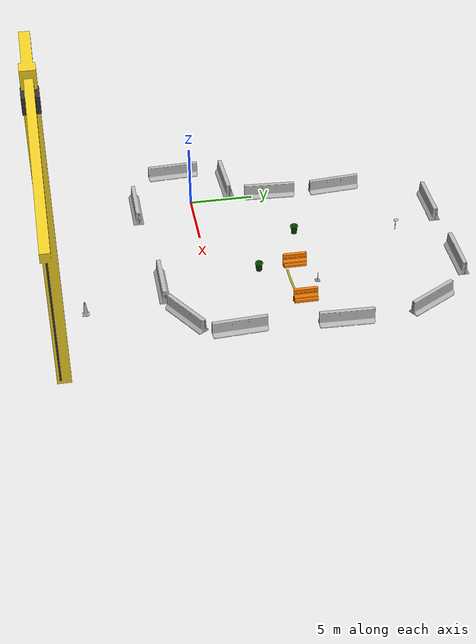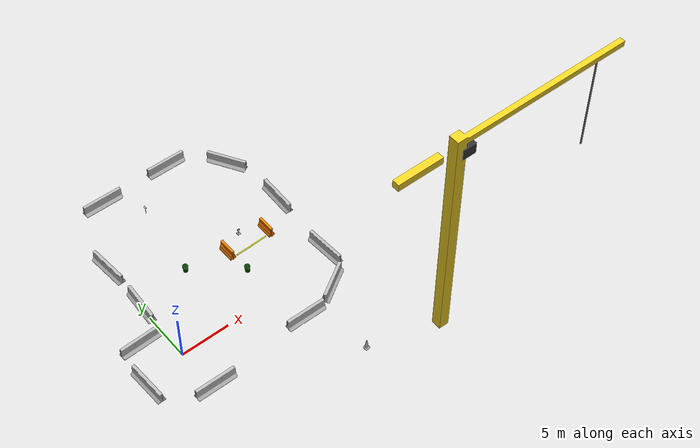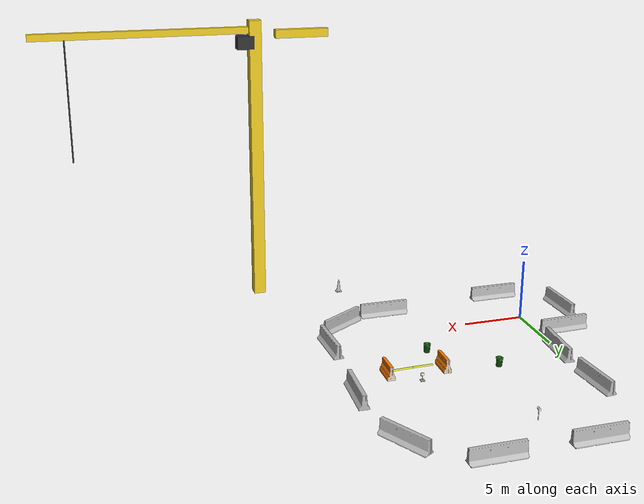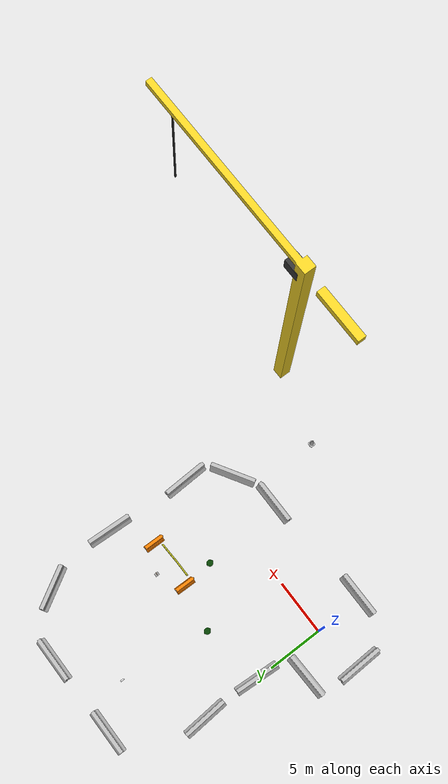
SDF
<sdf version="1.6">
 <world name="default">
  <light name="sun" type="directional">
   <pose>0 0 10 0 -0 0</pose>
   <diffuse>0.8 0.8 0.8 1</diffuse>
   <specular>0.2 0.2 0.2 1</specular>
   <attenuation>
    <range>1000</range>
    <constant>0.9</constant>
    <linear>0.01</linear>
    <quadratic>0.001</quadratic>
   </attenuation>
   <direction>-0.5 0.1 -0.9</direction>
  </light>
  <gravity>0 0 -9.8</gravity>
  <magnetic_field>6e-06 2.3e-05 -4.2e-05</magnetic_field>
  <atmosphere type="adiabatic"/>
  <physics name="default_physics" default="0" type="ode">
   <max_step_size>0.001</max_step_size>
   <real_time_factor>1</real_time_factor>
   <real_time_update_rate>1000</real_time_update_rate>
  </physics>
  <scene><ambient>0.4 0.4 0.4 1</ambient><background>0.7 0.7 0.7 1</background><shadows>1</shadows></scene>
  <audio><device>default</device></audio>
  <spherical_coordinates>
   <surface_model>EARTH_WGS84</surface_model>
   <latitude_deg>0</latitude_deg>
   <longitude_deg>0</longitude_deg>
   <elevation>0</elevation>
   <heading_deg>0</heading_deg>
  </spherical_coordinates>
  <model name="Construction Cone_1">
   <link name="link">
    <collision name="collision">
     <geometry>
      <mesh><scale>10 10 10</scale><uri>model://construction_cone/meshes/construction_cone.dae</uri></mesh>
     </geometry>
    </collision>
    <visual name="visual">
     <geometry>
      <mesh><scale>10 10 10</scale><uri>model://construction_cone/meshes/construction_cone.dae</uri></mesh>
     </geometry>
    </visual>
    <inertial>
     <inertia><ixx>1</ixx><ixy>0</ixy><ixz>0</ixz><iyy>1</iyy><iyz>0</iyz><izz>1</izz></inertia>
     <mass>1</mass>
    </inertial>
   </link>
   <pose>12.9924 -9.53238 -0.018163 0.015348 -0.010623 0.000372</pose>
  </model>
  <model name="jersey_barrier">
   <static>1</static>
   <link name="link">
    <visual name="visual">
     <geometry><mesh><uri>model://jersey_barrier/meshes/jersey_barrier.dae</uri></mesh></geometry>
    </visual>
    <collision name="upright">
     <pose>0 0 0.5715 0 -0 0</pose>
     <geometry><box><size>4.06542 0.3063 1.143</size></box></geometry>
    </collision>
    <collision name="base">
     <pose>0 0 0.032258 0 -0 0</pose>
     <geometry><box><size>4.06542 0.8107 0.064516</size></box></geometry>
    </collision>
    <collision name="base2">
     <pose>0 0 0.1 0 -0 0</pose>
     <geometry><box><size>4.06542 0.65 0.1</size></box></geometry>
    </collision>
    <collision name="base3">
     <pose>0 0 0.2 0 -0 0</pose>
     <geometry><box><size>4.06542 0.5 0.1</size></box></geometry>
    </collision>
    <collision name="left-angle">
     <pose>0 -0.224 0.2401 0.9 -0 0</pose>
     <geometry><box><size>4.06542 0.5 0.064516</size></box></geometry>
    </collision>
    <collision name="right-angle">
     <pose>0 0.224 0.2401 -0.9 0 0</pose>
     <geometry><box><size>4.06542 0.5 0.064516</size></box></geometry>
    </collision>
   </link>
   <pose>10.8468 -3.68239 0 0 -0 0</pose>
  </model>
  <model name="first_2015_trash_can">
   <link name="link">
    <inertial>
     <pose>0 0 0.3683 0 -0 0</pose>
     <mass>4.83076</mass>
     <inertia>
      <ixx>0.281534</ixx>
      <ixy>0</ixy>
      <ixz>0</ixz>
      <iyy>0.281534</iyy>
      <iyz>0</iyz>
      <izz>0.126223</izz>
     </inertia>
    </inertial>
    <visual name="visual">
     <geometry><mesh><uri>model://first_2015_trash_can/meshes/trash_can.dae</uri></mesh></geometry>
    </visual>
    <collision name="collision">
     <geometry><mesh><uri>model://first_2015_trash_can/meshes/trash_can.dae</uri></mesh></geometry>
    </collision>
   </link>
   <pose>9.96337 3.82178 0.011996 -0.025625 0.004564 0.000106</pose>
  </model>
  <model name="jersey_barrier_0">
   <static>1</static>
   <link name="link">
    <visual name="visual">
     <geometry><mesh><uri>model://jersey_barrier/meshes/jersey_barrier.dae</uri></mesh></geometry>
    </visual>
    <collision name="upright">
     <pose>0 0 0.5715 0 -0 0</pose>
     <geometry><box><size>4.06542 0.3063 1.143</size></box></geometry>
    </collision>
    <collision name="base">
     <pose>0 0 0.032258 0 -0 0</pose>
     <geometry><box><size>4.06542 0.8107 0.064516</size></box></geometry>
    </collision>
    <collision name="base2">
     <pose>0 0 0.1 0 -0 0</pose>
     <geometry><box><size>4.06542 0.65 0.1</size></box></geometry>
    </collision>
    <collision name="base3">
     <pose>0 0 0.2 0 -0 0</pose>
     <geometry><box><size>4.06542 0.5 0.1</size></box></geometry>
    </collision>
    <collision name="left-angle">
     <pose>0 -0.224 0.2401 0.9 -0 0</pose>
     <geometry><box><size>4.06542 0.5 0.064516</size></box></geometry>
    </collision>
    <collision name="right-angle">
     <pose>0 0.224 0.2401 -0.9 0 0</pose>
     <geometry><box><size>4.06542 0.5 0.064516</size></box></geometry>
    </collision>
   </link>
   <pose>16.9794 1.19358 0 0 -0 1.6211</pose>
  </model>
  <model name="first_2015_trash_can_0">
   <link name="link">
    <inertial>
     <pose>0 0 0.3683 0 -0 0</pose>
     <mass>4.83076</mass>
     <inertia>
      <ixx>0.281534</ixx>
      <ixy>0</ixy>
      <ixz>0</ixz>
      <iyy>0.281534</iyy>
      <iyz>0</iyz>
      <izz>0.126223</izz>
     </inertia>
    </inertial>
    <visual name="visual">
     <geometry><mesh><uri>model://first_2015_trash_can/meshes/trash_can.dae</uri></mesh></geometry>
    </visual>
    <collision name="collision">
     <geometry><mesh><uri>model://first_2015_trash_can/meshes/trash_can.dae</uri></mesh></geometry>
    </collision>
   </link>
   <pose>5.58885 7.41546 -0.022293 -0.009962 -0.014675 8e-06</pose>
  </model>
  <model name="jersey_barrier_1">
   <static>1</static>
   <link name="link">
    <visual name="visual">
     <geometry><mesh><uri>model://jersey_barrier/meshes/jersey_barrier.dae</uri></mesh></geometry>
    </visual>
    <collision name="upright">
     <pose>0 0 0.5715 0 -0 0</pose>
     <geometry><box><size>4.06542 0.3063 1.143</size></box></geometry>
    </collision>
    <collision name="base">
     <pose>0 0 0.032258 0 -0 0</pose>
     <geometry><box><size>4.06542 0.8107 0.064516</size></box></geometry>
    </collision>
    <collision name="base2">
     <pose>0 0 0.1 0 -0 0</pose>
     <geometry><box><size>4.06542 0.65 0.1</size></box></geometry>
    </collision>
    <collision name="base3">
     <pose>0 0 0.2 0 -0 0</pose>
     <geometry><box><size>4.06542 0.5 0.1</size></box></geometry>
    </collision>
    <collision name="left-angle">
     <pose>0 -0.224 0.2401 0.9 -0 0</pose>
     <geometry><box><size>4.06542 0.5 0.064516</size></box></geometry>
    </collision>
    <collision name="right-angle">
     <pose>0 0.224 0.2401 -0.9 0 0</pose>
     <geometry><box><size>4.06542 0.5 0.064516</size></box></geometry>
    </collision>
   </link>
   <pose>0.090674 6.449 0 0 -0 1.51262</pose>
  </model>
  <model name="jersey_barrier_2">
   <static>1</static>
   <link name="link">
    <visual name="visual">
     <geometry><mesh><uri>model://jersey_barrier/meshes/jersey_barrier.dae</uri></mesh></geometry>
    </visual>
    <collision name="upright">
     <pose>0 0 0.5715 0 -0 0</pose>
     <geometry><box><size>4.06542 0.3063 1.143</size></box></geometry>
    </collision>
    <collision name="base">
     <pose>0 0 0.032258 0 -0 0</pose>
     <geometry><box><size>4.06542 0.8107 0.064516</size></box></geometry>
    </collision>
    <collision name="base2">
     <pose>0 0 0.1 0 -0 0</pose>
     <geometry><box><size>4.06542 0.65 0.1</size></box></geometry>
    </collision>
    <collision name="base3">
     <pose>0 0 0.2 0 -0 0</pose>
     <geometry><box><size>4.06542 0.5 0.1</size></box></geometry>
    </collision>
    <collision name="left-angle">
     <pose>0 -0.224 0.2401 0.9 -0 0</pose>
     <geometry><box><size>4.06542 0.5 0.064516</size></box></geometry>
    </collision>
    <collision name="right-angle">
     <pose>0 0.224 0.2401 -0.9 0 0</pose>
     <geometry><box><size>4.06542 0.5 0.064516</size></box></geometry>
    </collision>
   </link>
   <pose>17.3619 8.94952 0 0 0 -1.6102</pose>
  </model>
  <model name="jersey_barrier_3">
   <static>1</static>
   <link name="link">
    <visual name="visual">
     <geometry><mesh><uri>model://jersey_barrier/meshes/jersey_barrier.dae</uri></mesh></geometry>
    </visual>
    <collision name="upright">
     <pose>0 0 0.5715 0 -0 0</pose>
     <geometry><box><size>4.06542 0.3063 1.143</size></box></geometry>
    </collision>
    <collision name="base">
     <pose>0 0 0.032258 0 -0 0</pose>
     <geometry><box><size>4.06542 0.8107 0.064516</size></box></geometry>
    </collision>
    <collision name="base2">
     <pose>0 0 0.1 0 -0 0</pose>
     <geometry><box><size>4.06542 0.65 0.1</size></box></geometry>
    </collision>
    <collision name="base3">
     <pose>0 0 0.2 0 -0 0</pose>
     <geometry><box><size>4.06542 0.5 0.1</size></box></geometry>
    </collision>
    <collision name="left-angle">
     <pose>0 -0.224 0.2401 0.9 -0 0</pose>
     <geometry><box><size>4.06542 0.5 0.064516</size></box></geometry>
    </collision>
    <collision name="right-angle">
     <pose>0 0.224 0.2401 -0.9 0 0</pose>
     <geometry><box><size>4.06542 0.5 0.064516</size></box></geometry>
    </collision>
   </link>
   <pose>11.3589 18.9756 0 0 -0 0</pose>
  </model>
  <model name="jersey_barrier_4">
   <static>1</static>
   <link name="link">
    <visual name="visual">
     <geometry><mesh><uri>model://jersey_barrier/meshes/jersey_barrier.dae</uri></mesh></geometry>
    </visual>
    <collision name="upright">
     <pose>0 0 0.5715 0 -0 0</pose>
     <geometry><box><size>4.06542 0.3063 1.143</size></box></geometry>
    </collision>
    <collision name="base">
     <pose>0 0 0.032258 0 -0 0</pose>
     <geometry><box><size>4.06542 0.8107 0.064516</size></box></geometry>
    </collision>
    <collision name="base2">
     <pose>0 0 0.1 0 -0 0</pose>
     <geometry><box><size>4.06542 0.65 0.1</size></box></geometry>
    </collision>
    <collision name="base3">
     <pose>0 0 0.2 0 -0 0</pose>
     <geometry><box><size>4.06542 0.5 0.1</size></box></geometry>
    </collision>
    <collision name="left-angle">
     <pose>0 -0.224 0.2401 0.9 -0 0</pose>
     <geometry><box><size>4.06542 0.5 0.064516</size></box></geometry>
    </collision>
    <collision name="right-angle">
     <pose>0 0.224 0.2401 -0.9 0 0</pose>
     <geometry><box><size>4.06542 0.5 0.064516</size></box></geometry>
    </collision>
   </link>
   <pose>4.00034 18.8022 0 0 -0 0</pose>
  </model>
  <model name="jersey_barrier_7">
   <static>1</static>
   <link name="link">
    <visual name="visual">
     <geometry><mesh><uri>model://jersey_barrier/meshes/jersey_barrier.dae</uri></mesh></geometry>
    </visual>
    <collision name="upright">
     <pose>0 0 0.5715 0 -0 0</pose>
     <geometry><box><size>4.06542 0.3063 1.143</size></box></geometry>
    </collision>
    <collision name="base">
     <pose>0 0 0.032258 0 -0 0</pose>
     <geometry><box><size>4.06542 0.8107 0.064516</size></box></geometry>
    </collision>
    <collision name="base2">
     <pose>0 0 0.1 0 -0 0</pose>
     <geometry><box><size>4.06542 0.65 0.1</size></box></geometry>
    </collision>
    <collision name="base3">
     <pose>0 0 0.2 0 -0 0</pose>
     <geometry><box><size>4.06542 0.5 0.1</size></box></geometry>
    </collision>
    <collision name="left-angle">
     <pose>0 -0.224 0.2401 0.9 -0 0</pose>
     <geometry><box><size>4.06542 0.5 0.064516</size></box></geometry>
    </collision>
    <collision name="right-angle">
     <pose>0 0.224 0.2401 -0.9 0 0</pose>
     <geometry><box><size>4.06542 0.5 0.064516</size></box></geometry>
    </collision>
   </link>
   <pose>0.097311 11.8014 0 0 0 -1.49309</pose>
  </model>
  <model name="jersey_barrier_8">
   <static>1</static>
   <link name="link">
    <visual name="visual">
     <geometry><mesh><uri>model://jersey_barrier/meshes/jersey_barrier.dae</uri></mesh></geometry>
    </visual>
    <collision name="upright">
     <pose>0 0 0.5715 0 -0 0</pose>
     <geometry><box><size>4.06542 0.3063 1.143</size></box></geometry>
    </collision>
    <collision name="base">
     <pose>0 0 0.032258 0 -0 0</pose>
     <geometry><box><size>4.06542 0.8107 0.064516</size></box></geometry>
    </collision>
    <collision name="base2">
     <pose>0 0 0.1 0 -0 0</pose>
     <geometry><box><size>4.06542 0.65 0.1</size></box></geometry>
    </collision>
    <collision name="base3">
     <pose>0 0 0.2 0 -0 0</pose>
     <geometry><box><size>4.06542 0.5 0.1</size></box></geometry>
    </collision>
    <collision name="left-angle">
     <pose>0 -0.224 0.2401 0.9 -0 0</pose>
     <geometry><box><size>4.06542 0.5 0.064516</size></box></geometry>
    </collision>
    <collision name="right-angle">
     <pose>0 0.224 0.2401 -0.9 0 0</pose>
     <geometry><box><size>4.06542 0.5 0.064516</size></box></geometry>
    </collision>
   </link>
   <pose>16.2818 15.639 0 0 0 -1.03676</pose>
  </model>
  <model name="drc_practice_yellow_parking_block">
   <static>1</static>
   <link name="link">
    <visual name="visual">
     <geometry><mesh><uri>model://drc_practice_yellow_parking_block/meshes/block.dae</uri></mesh></geometry>
    </visual>
    <collision name="collision">
     <geometry><mesh><uri>model://drc_practice_yellow_parking_block/meshes/block.dae</uri></mesh></geometry>
    </collision>
   </link>
   <pose>11.2221 5.95545 0 0 0 -1.55759</pose>
  </model>
  <model name="drc_practice_yellow_parking_block_0">
   <static>1</static>
   <link name="link">
    <visual name="visual">
     <geometry><mesh><uri>model://drc_practice_yellow_parking_block/meshes/block.dae</uri></mesh></geometry>
    </visual>
    <collision name="collision">
     <geometry><mesh><uri>model://drc_practice_yellow_parking_block/meshes/block.dae</uri></mesh></geometry>
    </collision>
   </link>
   <pose>12.8414 6.01079 0 0 0 -1.52489</pose>
  </model>
  <model name="jersey_barrier_9">
   <static>1</static>
   <link name="link">
    <visual name="visual">
     <geometry><mesh><uri>model://jersey_barrier/meshes/jersey_barrier.dae</uri></mesh></geometry>
    </visual>
    <collision name="upright">
     <pose>0 0 0.5715 0 -0 0</pose>
     <geometry><box><size>4.06542 0.3063 1.143</size></box></geometry>
    </collision>
    <collision name="base">
     <pose>0 0 0.032258 0 -0 0</pose>
     <geometry><box><size>4.06542 0.8107 0.064516</size></box></geometry>
    </collision>
    <collision name="base2">
     <pose>0 0 0.1 0 -0 0</pose>
     <geometry><box><size>4.06542 0.65 0.1</size></box></geometry>
    </collision>
    <collision name="base3">
     <pose>0 0 0.2 0 -0 0</pose>
     <geometry><box><size>4.06542 0.5 0.1</size></box></geometry>
    </collision>
    <collision name="left-angle">
     <pose>0 -0.224 0.2401 0.9 -0 0</pose>
     <geometry><box><size>4.06542 0.5 0.064516</size></box></geometry>
    </collision>
    <collision name="right-angle">
     <pose>0 0.224 0.2401 -0.9 0 0</pose>
     <geometry><box><size>4.06542 0.5 0.064516</size></box></geometry>
    </collision>
   </link>
   <pose>-2.25258 3.09565 0 0 0 -3.10908</pose>
  </model>
  <model name="jersey_barrier_10">
   <static>1</static>
   <link name="link">
    <visual name="visual">
     <geometry><mesh><uri>model://jersey_barrier/meshes/jersey_barrier.dae</uri></mesh></geometry>
    </visual>
    <collision name="upright">
     <pose>0 0 0.5715 0 -0 0</pose>
     <geometry><box><size>4.06542 0.3063 1.143</size></box></geometry>
    </collision>
    <collision name="base">
     <pose>0 0 0.032258 0 -0 0</pose>
     <geometry><box><size>4.06542 0.8107 0.064516</size></box></geometry>
    </collision>
    <collision name="base2">
     <pose>0 0 0.1 0 -0 0</pose>
     <geometry><box><size>4.06542 0.65 0.1</size></box></geometry>
    </collision>
    <collision name="base3">
     <pose>0 0 0.2 0 -0 0</pose>
     <geometry><box><size>4.06542 0.5 0.1</size></box></geometry>
    </collision>
    <collision name="left-angle">
     <pose>0 -0.224 0.2401 0.9 -0 0</pose>
     <geometry><box><size>4.06542 0.5 0.064516</size></box></geometry>
    </collision>
    <collision name="right-angle">
     <pose>0 0.224 0.2401 -0.9 0 0</pose>
     <geometry><box><size>4.06542 0.5 0.064516</size></box></geometry>
    </collision>
   </link>
   <pose>-4.19616 -0.932131 0 0 0 -1.52795</pose>
  </model>
  <model name="jersey_barrier_11">
   <static>1</static>
   <link name="link">
    <visual name="visual">
     <geometry><mesh><uri>model://jersey_barrier/meshes/jersey_barrier.dae</uri></mesh></geometry>
    </visual>
    <collision name="upright">
     <pose>0 0 0.5715 0 -0 0</pose>
     <geometry><box><size>4.06542 0.3063 1.143</size></box></geometry>
    </collision>
    <collision name="base">
     <pose>0 0 0.032258 0 -0 0</pose>
     <geometry><box><size>4.06542 0.8107 0.064516</size></box></geometry>
    </collision>
    <collision name="base2">
     <pose>0 0 0.1 0 -0 0</pose>
     <geometry><box><size>4.06542 0.65 0.1</size></box></geometry>
    </collision>
    <collision name="base3">
     <pose>0 0 0.2 0 -0 0</pose>
     <geometry><box><size>4.06542 0.5 0.1</size></box></geometry>
    </collision>
    <collision name="left-angle">
     <pose>0 -0.224 0.2401 0.9 -0 0</pose>
     <geometry><box><size>4.06542 0.5 0.064516</size></box></geometry>
    </collision>
    <collision name="right-angle">
     <pose>0 0.224 0.2401 -0.9 0 0</pose>
     <geometry><box><size>4.06542 0.5 0.064516</size></box></geometry>
    </collision>
   </link>
   <pose>0.365734 -4.50604 0 0 -0 0</pose>
  </model>
  <model name="jersey_barrier_clone">
   <static>1</static>
   <link name="link">
    <visual name="visual">
     <geometry><mesh><uri>model://jersey_barrier/meshes/jersey_barrier.dae</uri></mesh></geometry>
    </visual>
    <collision name="upright">
     <pose>0 0 0.5715 0 -0 0</pose>
     <geometry><box><size>4.06542 0.3063 1.143</size></box></geometry>
    </collision>
    <collision name="base">
     <pose>0 0 0.032258 0 -0 0</pose>
     <geometry><box><size>4.06542 0.8107 0.064516</size></box></geometry>
    </collision>
    <collision name="base2">
     <pose>0 0 0.1 0 -0 0</pose>
     <geometry><box><size>4.06542 0.65 0.1</size></box></geometry>
    </collision>
    <collision name="base3">
     <pose>0 0 0.2 0 -0 0</pose>
     <geometry><box><size>4.06542 0.5 0.1</size></box></geometry>
    </collision>
    <collision name="left-angle">
     <pose>0 -0.224 0.2401 0.9 -0 0</pose>
     <geometry><box><size>4.06542 0.5 0.064516</size></box></geometry>
    </collision>
    <collision name="right-angle">
     <pose>0 0.224 0.2401 -0.9 0 0</pose>
     <geometry><box><size>4.06542 0.5 0.064516</size></box></geometry>
    </collision>
   </link>
   <pose>14.9329 -2.38981 0 0 -0 0.549599</pose>
  </model>
  <model name="drc_practice_organge_jersey_barrier">
   <static>1</static>
   <link name="link">
    <visual name="visual">
     <geometry>
      <mesh><uri>model://drc_practice_orange_jersey_barrier/meshes/jersey_barrier.dae</uri></mesh>
     </geometry>
    </visual>
    <collision name="collision">
     <geometry>
      <mesh><uri>model://drc_practice_orange_jersey_barrier/meshes/jersey_barrier.dae</uri></mesh>
     </geometry>
    </collision>
   </link>
   <pose>9.77921 6.63375 0 0 -0 0</pose>
  </model>
  <model name="drc_practice_organge_jersey_barrier_0">
   <static>1</static>
   <link name="link">
    <visual name="visual">
     <geometry>
      <mesh><uri>model://drc_practice_orange_jersey_barrier/meshes/jersey_barrier.dae</uri></mesh>
     </geometry>
    </visual>
    <collision name="collision">
     <geometry>
      <mesh><uri>model://drc_practice_orange_jersey_barrier/meshes/jersey_barrier.dae</uri></mesh>
     </geometry>
    </collision>
   </link>
   <pose>14.194 6.58616 0 0 -0 0</pose>
  </model>
  <model name="Mailbox">
   <link name="link">
    <collision name="collision">
     <geometry><mesh><uri>model://mailbox/meshes/mailbox.dae</uri></mesh></geometry>
    </collision>
    <visual name="visual">
     <geometry><mesh><uri>model://mailbox/meshes/mailbox.dae</uri></mesh></geometry>
     <material>
      <script>
       <uri>model://mailbox/materials/scripts</uri>
       <uri>model://mailbox/materials/textures</uri>
       <name>Mailbox/Diffuse</name>
      </script>
     </material>
    </visual>
    <inertial>
     <inertia><ixx>1</ixx><ixy>0</ixy><ixz>0</ixz><iyy>1</iyy><iyz>0</iyz><izz>1</izz></inertia>
     <mass>1</mass>
    </inertial>
   </link>
   <pose>6.58565 15.3584 0.018295 -0.024591 0.012379 0.000966</pose>
  </model>
  <model name="tower_crane">
   <static>1</static>
   <link name="link">
    <collision name="collision">
     <geometry><mesh><uri>model://tower_crane/meshes/tower_crane.dae</uri></mesh></geometry>
    </collision>
    <visual name="visual">
     <geometry><mesh><uri>model://tower_crane/meshes/tower_crane.dae</uri></mesh></geometry>
    </visual>
   </link>
   <pose>19.8174 -11.5538 0 0 -0 0</pose>
  </model>
  <model name="aruco_wood_thin_base_1">
   <link name="link_0">
    <inertial>
     <mass>1</mass>
     <inertia>
      <ixx>0.0134333</ixx>
      <ixy>0</ixy>
      <ixz>0</ixz>
      <iyy>0.0134333</iyy>
      <iyz>0</iyz>
      <izz>0.0002</izz>
     </inertia>
    </inertial>
    <pose>-0.017932 0.660168 -0.097628 0 -0 0</pose>
    <visual name="visual">
     <geometry><cylinder><radius>0.02</radius><length>0.4</length></cylinder></geometry>
     <material>
      <lighting>1</lighting>
      <script><uri>file://media/materials/scripts/gazebo.material</uri><name>Gazebo/Wood</name></script>
      <shader type="vertex"><normal_map>__default__</normal_map></shader>
      <ambient>0.3 0.3 0.3 1</ambient>
      <diffuse>0.7 0.7 0.7 1</diffuse>
      <specular>0.01 0.01 0.01 1</specular>
      <emissive>0 0 0 1</emissive>
     </material>
    </visual>
    <collision name="collision">
     <geometry><cylinder><radius>0.02</radius><length>0.4</length></cylinder></geometry>
     <surface>
      <friction>
       <ode><mu>1</mu><mu2>1</mu2><fdir1>0 0 0</fdir1><slip1>0</slip1><slip2>0</slip2></ode>
       <torsional>
        <coefficient>1</coefficient>
        <patch_radius>0</patch_radius>
        <surface_radius>0</surface_radius>
        <use_patch_radius>1</use_patch_radius>
        <ode><slip>0</slip></ode>
       </torsional>
      </friction>
      <bounce><restitution_coefficient>0</restitution_coefficient><threshold>1e+06</threshold></bounce>
      <contact>
       <collide_without_contact>0</collide_without_contact>
       <collide_without_contact_bitmask>1</collide_without_contact_bitmask>
       <collide_bitmask>1</collide_bitmask>
       <ode>
        <soft_cfm>0</soft_cfm>
        <soft_erp>0.2</soft_erp>
        <kp>1e+13</kp>
        <kd>1</kd>
        <max_vel>0.01</max_vel>
        <min_depth>0</min_depth>
       </ode>
       <bullet>
        <split_impulse>1</split_impulse>
        <split_impulse_penetration_threshold>-0.01</split_impulse_penetration_threshold>
        <soft_cfm>0</soft_cfm>
        <soft_erp>0.2</soft_erp>
        <kp>1e+13</kp>
        <kd>1</kd>
       </bullet>
      </contact>
     </surface>
    </collision>
   </link>
   <link name="link_0_0">
    <inertial>
     <mass>0.00411596</mass>
     <inertia>
      <ixx>3.246e-05</ixx>
      <ixy>0</ixy>
      <ixz>0</ixz>
      <iyy>4.442e-05</iyy>
      <iyz>0</iyz>
      <izz>7.59e-05</izz>
     </inertia>
    </inertial>
    <pose>-0.015207 0.663184 -0.304733 0 -0 0.045</pose>
    <visual name="visual">
     <geometry><box><size>0.357871 0.305285 0.037723</size></box></geometry>
     <material>
      <lighting>1</lighting>
      <script><uri>file://media/materials/scripts/gazebo.material</uri><name>Gazebo/Grey</name></script>
      <shader type="vertex"><normal_map>__default__</normal_map></shader>
      <emissive>0 0 0 1</emissive>
     </material>
    </visual>
    <collision name="collision">
     <geometry><box><size>0.357871 0.305285 0.037723</size></box></geometry>
     <surface>
      <friction>
       <ode><mu>1</mu><mu2>1</mu2><fdir1>0 0 0</fdir1><slip1>0</slip1><slip2>0</slip2></ode>
       <torsional>
        <coefficient>1</coefficient>
        <patch_radius>0</patch_radius>
        <surface_radius>0</surface_radius>
        <use_patch_radius>1</use_patch_radius>
        <ode><slip>0</slip></ode>
       </torsional>
      </friction>
      <bounce><restitution_coefficient>0</restitution_coefficient><threshold>1e+06</threshold></bounce>
      <contact>
       <collide_without_contact>0</collide_without_contact>
       <collide_without_contact_bitmask>1</collide_without_contact_bitmask>
       <collide_bitmask>1</collide_bitmask>
       <ode>
        <soft_cfm>0</soft_cfm>
        <soft_erp>0.2</soft_erp>
        <kp>1e+13</kp>
        <kd>1</kd>
        <max_vel>0.01</max_vel>
        <min_depth>0</min_depth>
       </ode>
       <bullet>
        <split_impulse>1</split_impulse>
        <split_impulse_penetration_threshold>-0.01</split_impulse_penetration_threshold>
        <soft_cfm>0</soft_cfm>
        <soft_erp>0.2</soft_erp>
        <kp>1e+13</kp>
        <kd>1</kd>
       </bullet>
      </contact>
     </surface>
    </collision>
   </link>
   <link name="link_1">
    <inertial>
     <mass>1.21407</mass>
     <inertia>
      <ixx>0.00864359</ixx>
      <ixy>0</ixy>
      <ixz>0</ixz>
      <iyy>0.00421539</iyy>
      <iyz>0</iyz>
      <izz>0.00446773</izz>
     </inertia>
    </inertial>
    <pose>-0.025899 0.66382 0.194379 0 -0 0</pose>
    <visual name="visual">
     <geometry><box><size>0.013978 0.209676 0.203642</size></box></geometry>
     <material>
      <script><uri>file://scripts</uri><uri>file://textures</uri><name>aruco/standard_opp</name></script>
      <emissive>0 0 0 1</emissive>
      <shader type="vertex"><normal_map>__default__</normal_map></shader>
      <ambient>1 1 1 1</ambient>
      <diffuse>1 1 1 1</diffuse>
      <specular>0 0 0 1</specular>
     </material>
    </visual>
    <collision name="collision">
     <geometry><box><size>0.013978 0.209676 0.203642</size></box></geometry>
     <surface>
      <friction>
       <ode><mu>1</mu><mu2>1</mu2><fdir1>0 0 0</fdir1><slip1>0</slip1><slip2>0</slip2></ode>
       <torsional>
        <coefficient>1</coefficient>
        <patch_radius>0</patch_radius>
        <surface_radius>0</surface_radius>
        <use_patch_radius>1</use_patch_radius>
        <ode><slip>0</slip></ode>
       </torsional>
      </friction>
      <bounce><restitution_coefficient>0</restitution_coefficient><threshold>1e+06</threshold></bounce>
      <contact>
       <collide_without_contact>0</collide_without_contact>
       <collide_without_contact_bitmask>1</collide_without_contact_bitmask>
       <collide_bitmask>1</collide_bitmask>
       <ode>
        <soft_cfm>0</soft_cfm>
        <soft_erp>0.2</soft_erp>
        <kp>1e+13</kp>
        <kd>1</kd>
        <max_vel>0.01</max_vel>
        <min_depth>0</min_depth>
       </ode>
       <bullet>
        <split_impulse>1</split_impulse>
        <split_impulse_penetration_threshold>-0.01</split_impulse_penetration_threshold>
        <soft_cfm>0</soft_cfm>
        <soft_erp>0.2</soft_erp>
        <kp>1e+13</kp>
        <kd>1</kd>
       </bullet>
      </contact>
     </surface>
    </collision>
   </link>
   <link name="link_1_clone">
    <inertial>
     <mass>0.519809</mass>
     <inertia>
      <ixx>0.00549167</ixx>
      <ixy>0</ixy>
      <ixz>0</ixz>
      <iyy>0.00278045</iyy>
      <iyz>0</iyz>
      <izz>0.00275135</izz>
     </inertia>
    </inertial>
    <pose>-0.015207 0.663184 0.195267 0 -0 0</pose>
    <visual name="visual">
     <geometry><box><size>0.021523 0.251103 0.252437</size></box></geometry>
     <material>
      <script><uri>file://scripts</uri><uri>file://textures</uri><name>Gazebo/Wood</name></script>
      <shader type="vertex"><normal_map>__default__</normal_map></shader>
      <ambient>1 1 1 1</ambient>
      <diffuse>1 1 1 1</diffuse>
      <specular>0 0 0 1</specular>
      <emissive>0 0 0 1</emissive>
     </material>
    </visual>
    <collision name="collision">
     <geometry><box><size>0.021523 0.251103 0.252437</size></box></geometry>
     <surface>
      <friction>
       <ode><mu>1</mu><mu2>1</mu2><fdir1>0 0 0</fdir1><slip1>0</slip1><slip2>0</slip2></ode>
       <torsional>
        <coefficient>1</coefficient>
        <patch_radius>0</patch_radius>
        <surface_radius>0</surface_radius>
        <use_patch_radius>1</use_patch_radius>
        <ode><slip>0</slip></ode>
       </torsional>
      </friction>
      <bounce><restitution_coefficient>0</restitution_coefficient><threshold>1e+06</threshold></bounce>
      <contact>
       <collide_without_contact>0</collide_without_contact>
       <collide_without_contact_bitmask>1</collide_without_contact_bitmask>
       <collide_bitmask>1</collide_bitmask>
       <ode>
        <soft_cfm>0</soft_cfm>
        <soft_erp>0.2</soft_erp>
        <kp>1e+13</kp>
        <kd>1</kd>
        <max_vel>0.01</max_vel>
        <min_depth>0</min_depth>
       </ode>
       <bullet>
        <split_impulse>1</split_impulse>
        <split_impulse_penetration_threshold>-0.01</split_impulse_penetration_threshold>
        <soft_cfm>0</soft_cfm>
        <soft_erp>0.2</soft_erp>
        <kp>1e+13</kp>
        <kd>1</kd>
       </bullet>
      </contact>
     </surface>
    </collision>
   </link>
   <link name="link_1_clone_0">
    <inertial>
     <mass>0.238009</mass>
     <inertia>
      <ixx>0.00161175</ixx>
      <ixy>0</ixy>
      <ixz>0</ixz>
      <iyy>0.000787067</iyy>
      <iyz>0</iyz>
      <izz>0.000832042</izz>
     </inertia>
    </inertial>
    <pose>-0.00403 0.665261 0.195247 0 -0 0</pose>
    <visual name="visual">
     <geometry><box><size>0.013624 0.204363 0.198738</size></box></geometry>
     <material>
      <script><uri>file://scripts</uri><uri>file://textures</uri><name>aruco/standard_opp</name></script>
      <emissive>0 0 0 1</emissive>
      <shader type="vertex"><normal_map>__default__</normal_map></shader>
      <ambient>1 1 1 1</ambient>
      <diffuse>1 1 1 1</diffuse>
      <specular>0 0 0 1</specular>
     </material>
    </visual>
    <collision name="collision">
     <geometry><box><size>0.013624 0.204363 0.198738</size></box></geometry>
     <surface>
      <friction>
       <ode><mu>1</mu><mu2>1</mu2><fdir1>0 0 0</fdir1><slip1>0</slip1><slip2>0</slip2></ode>
       <torsional>
        <coefficient>1</coefficient>
        <patch_radius>0</patch_radius>
        <surface_radius>0</surface_radius>
        <use_patch_radius>1</use_patch_radius>
        <ode><slip>0</slip></ode>
       </torsional>
      </friction>
      <bounce><restitution_coefficient>0</restitution_coefficient><threshold>1e+06</threshold></bounce>
      <contact>
       <collide_without_contact>0</collide_without_contact>
       <collide_without_contact_bitmask>1</collide_without_contact_bitmask>
       <collide_bitmask>1</collide_bitmask>
       <ode>
        <soft_cfm>0</soft_cfm>
        <soft_erp>0.2</soft_erp>
        <kp>1e+13</kp>
        <kd>1</kd>
        <max_vel>0.01</max_vel>
        <min_depth>0</min_depth>
       </ode>
       <bullet>
        <split_impulse>1</split_impulse>
        <split_impulse_penetration_threshold>-0.01</split_impulse_penetration_threshold>
        <soft_cfm>0</soft_cfm>
        <soft_erp>0.2</soft_erp>
        <kp>1e+13</kp>
        <kd>1</kd>
       </bullet>
      </contact>
     </surface>
    </collision>
   </link>
   <joint name="link_0_JOINT_0" type="fixed">
    <parent>link_0</parent>
    <child>link_1</child>
    <physics>
     <ode><limit><cfm>0</cfm><erp>0.2</erp></limit><suspension><cfm>0</cfm><erp>0.2</erp></suspension></ode>
    </physics>
   </joint>
   <joint name="link_1_JOINT_0_0" type="fixed">
    <parent>link_1</parent>
    <child>link_1_clone_0</child>
    <physics>
     <ode><limit><cfm>0</cfm><erp>0.2</erp></limit><suspension><cfm>0</cfm><erp>0.2</erp></suspension></ode>
    </physics>
   </joint>
   <joint name="link_1_JOINT_0" type="fixed">
    <parent>link_1</parent>
    <child>link_1_clone</child>
    <physics>
     <ode><limit><cfm>0</cfm><erp>0.2</erp></limit><suspension><cfm>0</cfm><erp>0.2</erp></suspension></ode>
    </physics>
   </joint>
   <joint name="link_1_clone_JOINT_0" type="fixed">
    <parent>link_1_clone</parent>
    <child>link_0_0</child>
    <physics>
     <ode><limit><cfm>0</cfm><erp>0.2</erp></limit><suspension><cfm>0</cfm><erp>0.2</erp></suspension></ode>
    </physics>
   </joint>
   <static>0</static>
   <pose>12.6456 7.91218 0.262944 0.024873 0.032252 1.48884</pose>
  </model>
 </world>
</sdf>
